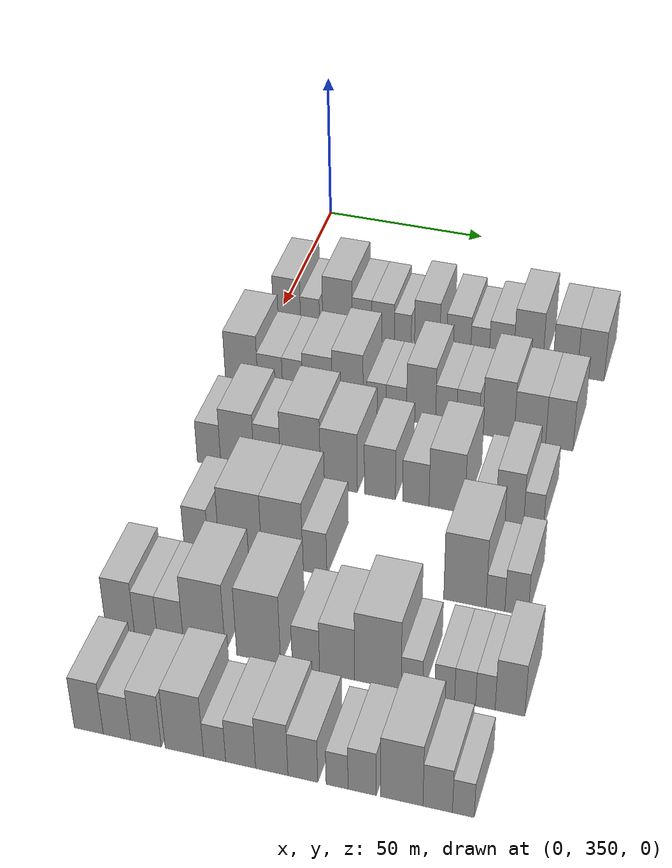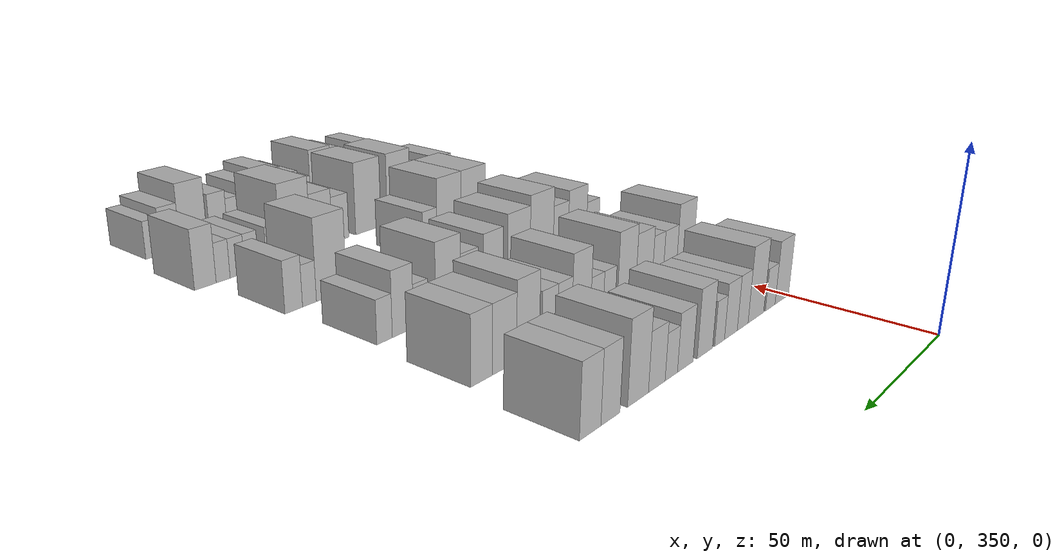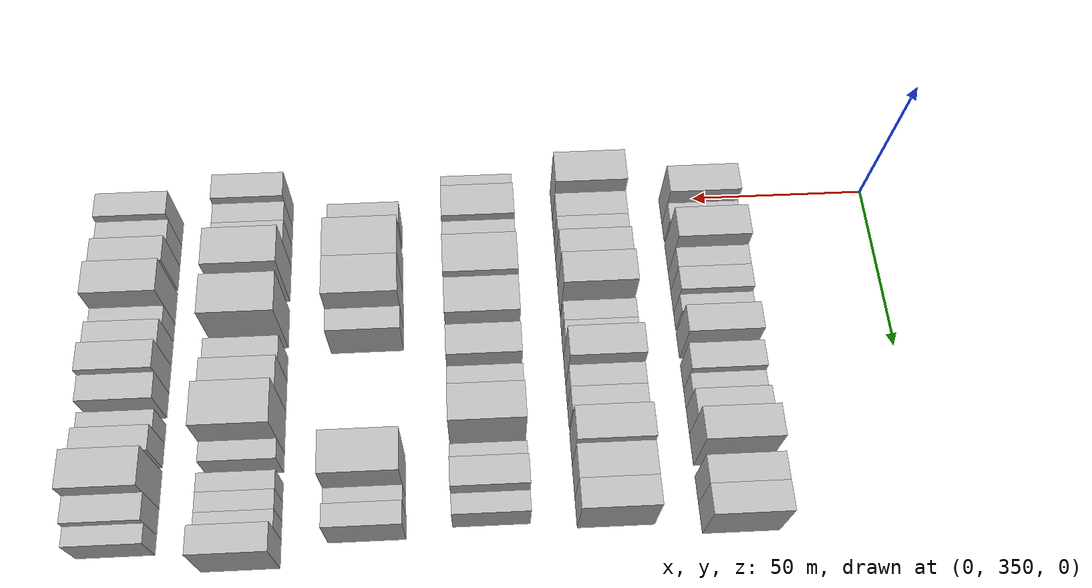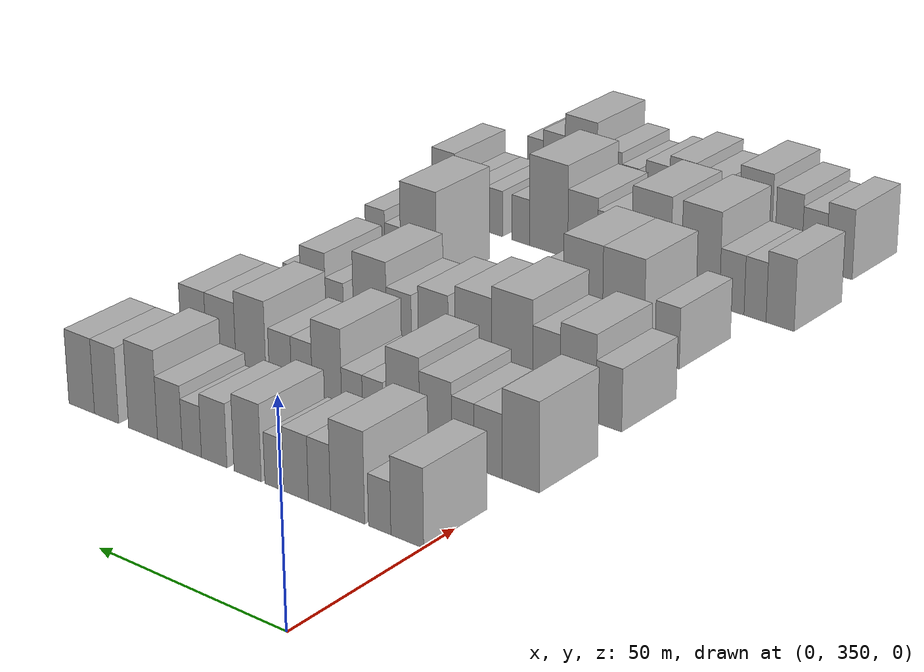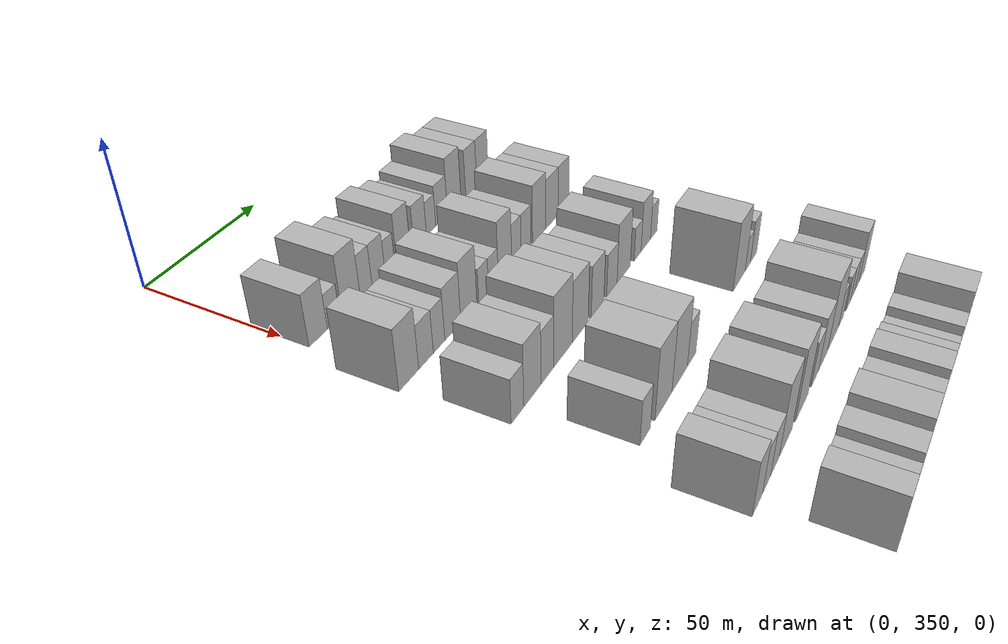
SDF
<sdf version="1.6">
 <world name="default">
  <model name="building_95">
   <static>1</static>
   <pose>50.0000 354.0853 0 0.000000 0.000000 0.000000</pose>
   <link name="link">
    <pose>0 0 9.00 0 0 0</pose>
    <collision name="collision"><geometry><box><size>20.0000 8.5305 18.0000</size></box></geometry></collision>
    <visual name="visual">
     <cast_shadows>0</cast_shadows>
     <geometry><box><size>20.0000 8.5305 18.0000</size></box></geometry>
     <material>
      <script>
       <uri>model://HANNAS_wall/materials/scripts</uri>
       <uri>model://HANNAS_wall/materials/textures</uri>
       <name>vrc/HANNAS_wall</name>
      </script>
     </material>
    </visual>
   </link>
  </model>
  <model name="building_96">
   <static>1</static>
   <pose>50.0000 361.3111 0 0.000000 0.000000 0.000000</pose>
   <link name="link">
    <pose>0 0 6.00 0 0 0</pose>
    <collision name="collision"><geometry><box><size>20.0000 5.9212 12.0000</size></box></geometry></collision>
    <visual name="visual">
     <cast_shadows>0</cast_shadows>
     <geometry><box><size>20.0000 5.9212 12.0000</size></box></geometry>
     <material>
      <script>
       <uri>model://HANNAS_wall/materials/scripts</uri>
       <uri>model://HANNAS_wall/materials/textures</uri>
       <name>vrc/HANNAS_wall</name>
      </script>
     </material>
    </visual>
   </link>
  </model>
  <model name="building_97">
   <static>1</static>
   <pose>50.0000 369.8337 0 0.000000 0.000000 0.000000</pose>
   <link name="link">
    <pose>0 0 10.50 0 0 0</pose>
    <collision name="collision"><geometry><box><size>20.0000 9.1239 21.0000</size></box></geometry></collision>
    <visual name="visual">
     <cast_shadows>0</cast_shadows>
     <geometry><box><size>20.0000 9.1239 21.0000</size></box></geometry>
     <material>
      <script>
       <uri>model://HANNAS_wall/materials/scripts</uri>
       <uri>model://HANNAS_wall/materials/textures</uri>
       <name>vrc/HANNAS_wall</name>
      </script>
     </material>
    </visual>
   </link>
  </model>
  <model name="building_98">
   <static>1</static>
   <pose>50.0000 377.4183 0 0.000000 0.000000 0.000000</pose>
   <link name="link">
    <pose>0 0 7.50 0 0 0</pose>
    <collision name="collision"><geometry><box><size>20.0000 6.0452 15.0000</size></box></geometry></collision>
    <visual name="visual">
     <cast_shadows>0</cast_shadows>
     <geometry><box><size>20.0000 6.0452 15.0000</size></box></geometry>
     <material>
      <script>
       <uri>model://HANNAS_wall/materials/scripts</uri>
       <uri>model://HANNAS_wall/materials/textures</uri>
       <name>vrc/HANNAS_wall</name>
      </script>
     </material>
    </visual>
   </link>
  </model>
  <model name="building_99">
   <static>1</static>
   <pose>50.0000 383.8844 0 0.000000 0.000000 0.000000</pose>
   <link name="link">
    <pose>0 0 7.50 0 0 0</pose>
    <collision name="collision"><geometry><box><size>20.0000 6.8869 15.0000</size></box></geometry></collision>
    <visual name="visual">
     <cast_shadows>0</cast_shadows>
     <geometry><box><size>20.0000 6.8869 15.0000</size></box></geometry>
     <material>
      <script>
       <uri>model://HANNAS_wall/materials/scripts</uri>
       <uri>model://HANNAS_wall/materials/textures</uri>
       <name>vrc/HANNAS_wall</name>
      </script>
     </material>
    </visual>
   </link>
  </model>
  <model name="building_100">
   <static>1</static>
   <pose>50.0000 389.9177 0 0.000000 0.000000 0.000000</pose>
   <link name="link">
    <pose>0 0 6.00 0 0 0</pose>
    <collision name="collision"><geometry><box><size>20.0000 5.1797 12.0000</size></box></geometry></collision>
    <visual name="visual">
     <cast_shadows>0</cast_shadows>
     <geometry><box><size>20.0000 5.1797 12.0000</size></box></geometry>
     <material>
      <script>
       <uri>model://HANNAS_wall/materials/scripts</uri>
       <uri>model://HANNAS_wall/materials/textures</uri>
       <name>vrc/HANNAS_wall</name>
      </script>
     </material>
    </visual>
   </link>
  </model>
  <model name="building_101">
   <static>1</static>
   <pose>50.0000 397.3579 0 0.000000 0.000000 0.000000</pose>
   <link name="link">
    <pose>0 0 9.00 0 0 0</pose>
    <collision name="collision"><geometry><box><size>20.0000 7.7007 18.0000</size></box></geometry></collision>
    <visual name="visual">
     <cast_shadows>0</cast_shadows>
     <geometry><box><size>20.0000 7.7007 18.0000</size></box></geometry>
     <material>
      <script>
       <uri>model://HANNAS_wall/materials/scripts</uri>
       <uri>model://HANNAS_wall/materials/textures</uri>
       <name>vrc/HANNAS_wall</name>
      </script>
     </material>
    </visual>
   </link>
  </model>
  <model name="building_102">
   <static>1</static>
   <pose>50.0000 406.8800 0 0.000000 0.000000 0.000000</pose>
   <link name="link">
    <pose>0 0 7.50 0 0 0</pose>
    <collision name="collision"><geometry><box><size>20.0000 7.3435 15.0000</size></box></geometry></collision>
    <visual name="visual">
     <cast_shadows>0</cast_shadows>
     <geometry><box><size>20.0000 7.3435 15.0000</size></box></geometry>
     <material>
      <script>
       <uri>model://HANNAS_wall/materials/scripts</uri>
       <uri>model://HANNAS_wall/materials/textures</uri>
       <name>vrc/HANNAS_wall</name>
      </script>
     </material>
    </visual>
   </link>
  </model>
  <model name="building_103">
   <static>1</static>
   <pose>50.0000 413.3430 0 0.000000 0.000000 0.000000</pose>
   <link name="link">
    <pose>0 0 6.00 0 0 0</pose>
    <collision name="collision"><geometry><box><size>20.0000 5.5825 12.0000</size></box></geometry></collision>
    <visual name="visual">
     <cast_shadows>0</cast_shadows>
     <geometry><box><size>20.0000 5.5825 12.0000</size></box></geometry>
     <material>
      <script>
       <uri>model://HANNAS_wall/materials/scripts</uri>
       <uri>model://HANNAS_wall/materials/textures</uri>
       <name>vrc/HANNAS_wall</name>
      </script>
     </material>
    </visual>
   </link>
  </model>
  <model name="building_104">
   <static>1</static>
   <pose>50.0000 419.7717 0 0.000000 0.000000 0.000000</pose>
   <link name="link">
    <pose>0 0 7.50 0 0 0</pose>
    <collision name="collision"><geometry><box><size>20.0000 7.2748 15.0000</size></box></geometry></collision>
    <visual name="visual">
     <cast_shadows>0</cast_shadows>
     <geometry><box><size>20.0000 7.2748 15.0000</size></box></geometry>
     <material>
      <script>
       <uri>model://HANNAS_wall/materials/scripts</uri>
       <uri>model://HANNAS_wall/materials/textures</uri>
       <name>vrc/HANNAS_wall</name>
      </script>
     </material>
    </visual>
   </link>
  </model>
  <model name="building_105">
   <static>1</static>
   <pose>50.0000 427.7318 0 0.000000 0.000000 0.000000</pose>
   <link name="link">
    <pose>0 0 10.50 0 0 0</pose>
    <collision name="collision"><geometry><box><size>20.0000 8.6454 21.0000</size></box></geometry></collision>
    <visual name="visual">
     <cast_shadows>0</cast_shadows>
     <geometry><box><size>20.0000 8.6454 21.0000</size></box></geometry>
     <material>
      <script>
       <uri>model://HANNAS_wall/materials/scripts</uri>
       <uri>model://HANNAS_wall/materials/textures</uri>
       <name>vrc/HANNAS_wall</name>
      </script>
     </material>
    </visual>
   </link>
  </model>
  <model name="building_106">
   <static>1</static>
   <pose>50.0000 438.7239 0 0.000000 0.000000 0.000000</pose>
   <link name="link">
    <pose>0 0 9.00 0 0 0</pose>
    <collision name="collision"><geometry><box><size>20.0000 7.3388 18.0000</size></box></geometry></collision>
    <visual name="visual">
     <cast_shadows>0</cast_shadows>
     <geometry><box><size>20.0000 7.3388 18.0000</size></box></geometry>
     <material>
      <script>
       <uri>model://HANNAS_wall/materials/scripts</uri>
       <uri>model://HANNAS_wall/materials/textures</uri>
       <name>vrc/HANNAS_wall</name>
      </script>
     </material>
    </visual>
   </link>
  </model>
  <model name="building_107">
   <static>1</static>
   <pose>50.0000 446.3287 0 0.000000 0.000000 0.000000</pose>
   <link name="link">
    <pose>0 0 9.00 0 0 0</pose>
    <collision name="collision"><geometry><box><size>20.0000 7.8707 18.0000</size></box></geometry></collision>
    <visual name="visual">
     <cast_shadows>0</cast_shadows>
     <geometry><box><size>20.0000 7.8707 18.0000</size></box></geometry>
     <material>
      <script>
       <uri>model://HANNAS_wall/materials/scripts</uri>
       <uri>model://HANNAS_wall/materials/textures</uri>
       <name>vrc/HANNAS_wall</name>
      </script>
     </material>
    </visual>
   </link>
  </model>
  <model name="building_212">
   <static>1</static>
   <pose>82.0000 350.5982 0 0.000000 0.000000 0.000000</pose>
   <link name="link">
    <pose>0 0 10.50 0 0 0</pose>
    <collision name="collision"><geometry><box><size>20.0000 9.7491 21.0000</size></box></geometry></collision>
    <visual name="visual">
     <cast_shadows>0</cast_shadows>
     <geometry><box><size>20.0000 9.7491 21.0000</size></box></geometry>
     <material>
      <script>
       <uri>model://HANNAS_wall/materials/scripts</uri>
       <uri>model://HANNAS_wall/materials/textures</uri>
       <name>vrc/HANNAS_wall</name>
      </script>
     </material>
    </visual>
   </link>
  </model>
  <model name="building_213">
   <static>1</static>
   <pose>82.0000 359.1956 0 0.000000 0.000000 0.000000</pose>
   <link name="link">
    <pose>0 0 7.50 0 0 0</pose>
    <collision name="collision"><geometry><box><size>20.0000 7.4457 15.0000</size></box></geometry></collision>
    <visual name="visual">
     <cast_shadows>0</cast_shadows>
     <geometry><box><size>20.0000 7.4457 15.0000</size></box></geometry>
     <material>
      <script>
       <uri>model://HANNAS_wall/materials/scripts</uri>
       <uri>model://HANNAS_wall/materials/textures</uri>
       <name>vrc/HANNAS_wall</name>
      </script>
     </material>
    </visual>
   </link>
  </model>
  <model name="building_214">
   <static>1</static>
   <pose>82.0000 365.9326 0 0.000000 0.000000 0.000000</pose>
   <link name="link">
    <pose>0 0 7.50 0 0 0</pose>
    <collision name="collision"><geometry><box><size>20.0000 6.0282 15.0000</size></box></geometry></collision>
    <visual name="visual">
     <cast_shadows>0</cast_shadows>
     <geometry><box><size>20.0000 6.0282 15.0000</size></box></geometry>
     <material>
      <script>
       <uri>model://HANNAS_wall/materials/scripts</uri>
       <uri>model://HANNAS_wall/materials/textures</uri>
       <name>vrc/HANNAS_wall</name>
      </script>
     </material>
    </visual>
   </link>
  </model>
  <model name="building_215">
   <static>1</static>
   <pose>82.0000 373.2964 0 0.000000 0.000000 0.000000</pose>
   <link name="link">
    <pose>0 0 9.00 0 0 0</pose>
    <collision name="collision"><geometry><box><size>20.0000 8.6994 18.0000</size></box></geometry></collision>
    <visual name="visual">
     <cast_shadows>0</cast_shadows>
     <geometry><box><size>20.0000 8.6994 18.0000</size></box></geometry>
     <material>
      <script>
       <uri>model://HANNAS_wall/materials/scripts</uri>
       <uri>model://HANNAS_wall/materials/textures</uri>
       <name>vrc/HANNAS_wall</name>
      </script>
     </material>
    </visual>
   </link>
  </model>
  <model name="building_216">
   <static>1</static>
   <pose>82.0000 382.2336 0 0.000000 0.000000 0.000000</pose>
   <link name="link">
    <pose>0 0 10.50 0 0 0</pose>
    <collision name="collision"><geometry><box><size>20.0000 9.1749 21.0000</size></box></geometry></collision>
    <visual name="visual">
     <cast_shadows>0</cast_shadows>
     <geometry><box><size>20.0000 9.1749 21.0000</size></box></geometry>
     <material>
      <script>
       <uri>model://HANNAS_wall/materials/scripts</uri>
       <uri>model://HANNAS_wall/materials/textures</uri>
       <name>vrc/HANNAS_wall</name>
      </script>
     </material>
    </visual>
   </link>
  </model>
  <model name="building_217">
   <static>1</static>
   <pose>82.0000 390.7008 0 0.000000 0.000000 0.000000</pose>
   <link name="link">
    <pose>0 0 6.00 0 0 0</pose>
    <collision name="collision"><geometry><box><size>20.0000 5.7595 12.0000</size></box></geometry></collision>
    <visual name="visual">
     <cast_shadows>0</cast_shadows>
     <geometry><box><size>20.0000 5.7595 12.0000</size></box></geometry>
     <material>
      <script>
       <uri>model://HANNAS_wall/materials/scripts</uri>
       <uri>model://HANNAS_wall/materials/textures</uri>
       <name>vrc/HANNAS_wall</name>
      </script>
     </material>
    </visual>
   </link>
  </model>
  <model name="building_218">
   <static>1</static>
   <pose>82.0000 396.5526 0 0.000000 0.000000 0.000000</pose>
   <link name="link">
    <pose>0 0 6.00 0 0 0</pose>
    <collision name="collision"><geometry><box><size>20.0000 5.9442 12.0000</size></box></geometry></collision>
    <visual name="visual">
     <cast_shadows>0</cast_shadows>
     <geometry><box><size>20.0000 5.9442 12.0000</size></box></geometry>
     <material>
      <script>
       <uri>model://HANNAS_wall/materials/scripts</uri>
       <uri>model://HANNAS_wall/materials/textures</uri>
       <name>vrc/HANNAS_wall</name>
      </script>
     </material>
    </visual>
   </link>
  </model>
  <model name="building_219">
   <static>1</static>
   <pose>82.0000 403.7409 0 0.000000 0.000000 0.000000</pose>
   <link name="link">
    <pose>0 0 10.50 0 0 0</pose>
    <collision name="collision"><geometry><box><size>20.0000 8.4323 21.0000</size></box></geometry></collision>
    <visual name="visual">
     <cast_shadows>0</cast_shadows>
     <geometry><box><size>20.0000 8.4323 21.0000</size></box></geometry>
     <material>
      <script>
       <uri>model://HANNAS_wall/materials/scripts</uri>
       <uri>model://HANNAS_wall/materials/textures</uri>
       <name>vrc/HANNAS_wall</name>
      </script>
     </material>
    </visual>
   </link>
  </model>
  <model name="building_220">
   <static>1</static>
   <pose>82.0000 410.9836 0 0.000000 0.000000 0.000000</pose>
   <link name="link">
    <pose>0 0 7.50 0 0 0</pose>
    <collision name="collision"><geometry><box><size>20.0000 6.0532 15.0000</size></box></geometry></collision>
    <visual name="visual">
     <cast_shadows>0</cast_shadows>
     <geometry><box><size>20.0000 6.0532 15.0000</size></box></geometry>
     <material>
      <script>
       <uri>model://HANNAS_wall/materials/scripts</uri>
       <uri>model://HANNAS_wall/materials/textures</uri>
       <name>vrc/HANNAS_wall</name>
      </script>
     </material>
    </visual>
   </link>
  </model>
  <model name="building_221">
   <static>1</static>
   <pose>82.0000 417.2935 0 0.000000 0.000000 0.000000</pose>
   <link name="link">
    <pose>0 0 7.50 0 0 0</pose>
    <collision name="collision"><geometry><box><size>20.0000 6.5666 15.0000</size></box></geometry></collision>
    <visual name="visual">
     <cast_shadows>0</cast_shadows>
     <geometry><box><size>20.0000 6.5666 15.0000</size></box></geometry>
     <material>
      <script>
       <uri>model://HANNAS_wall/materials/scripts</uri>
       <uri>model://HANNAS_wall/materials/textures</uri>
       <name>vrc/HANNAS_wall</name>
      </script>
     </material>
    </visual>
   </link>
  </model>
  <model name="building_222">
   <static>1</static>
   <pose>82.0000 426.0742 0 0.000000 0.000000 0.000000</pose>
   <link name="link">
    <pose>0 0 10.50 0 0 0</pose>
    <collision name="collision"><geometry><box><size>20.0000 8.9947 21.0000</size></box></geometry></collision>
    <visual name="visual">
     <cast_shadows>0</cast_shadows>
     <geometry><box><size>20.0000 8.9947 21.0000</size></box></geometry>
     <material>
      <script>
       <uri>model://HANNAS_wall/materials/scripts</uri>
       <uri>model://HANNAS_wall/materials/textures</uri>
       <name>vrc/HANNAS_wall</name>
      </script>
     </material>
    </visual>
   </link>
  </model>
  <model name="building_223">
   <static>1</static>
   <pose>82.0000 435.0455 0 0.000000 0.000000 0.000000</pose>
   <link name="link">
    <pose>0 0 9.00 0 0 0</pose>
    <collision name="collision"><geometry><box><size>20.0000 8.9478 18.0000</size></box></geometry></collision>
    <visual name="visual">
     <cast_shadows>0</cast_shadows>
     <geometry><box><size>20.0000 8.9478 18.0000</size></box></geometry>
     <material>
      <script>
       <uri>model://HANNAS_wall/materials/scripts</uri>
       <uri>model://HANNAS_wall/materials/textures</uri>
       <name>vrc/HANNAS_wall</name>
      </script>
     </material>
    </visual>
   </link>
  </model>
  <model name="building_224">
   <static>1</static>
   <pose>82.0000 443.3984 0 0.000000 0.000000 0.000000</pose>
   <link name="link">
    <pose>0 0 9.00 0 0 0</pose>
    <collision name="collision"><geometry><box><size>20.0000 7.7579 18.0000</size></box></geometry></collision>
    <visual name="visual">
     <cast_shadows>0</cast_shadows>
     <geometry><box><size>20.0000 7.7579 18.0000</size></box></geometry>
     <material>
      <script>
       <uri>model://HANNAS_wall/materials/scripts</uri>
       <uri>model://HANNAS_wall/materials/textures</uri>
       <name>vrc/HANNAS_wall</name>
      </script>
     </material>
    </visual>
   </link>
  </model>
  <model name="building_330">
   <static>1</static>
   <pose>114.0000 351.7966 0 0.000000 0.000000 0.000000</pose>
   <link name="link">
    <pose>0 0 7.50 0 0 0</pose>
    <collision name="collision"><geometry><box><size>20.0000 6.8586 15.0000</size></box></geometry></collision>
    <visual name="visual">
     <cast_shadows>0</cast_shadows>
     <geometry><box><size>20.0000 6.8586 15.0000</size></box></geometry>
     <material>
      <script>
       <uri>model://HANNAS_wall/materials/scripts</uri>
       <uri>model://HANNAS_wall/materials/textures</uri>
       <name>vrc/HANNAS_wall</name>
      </script>
     </material>
    </visual>
   </link>
  </model>
  <model name="building_331">
   <static>1</static>
   <pose>114.0000 360.0717 0 0.000000 0.000000 0.000000</pose>
   <link name="link">
    <pose>0 0 10.50 0 0 0</pose>
    <collision name="collision"><geometry><box><size>20.0000 9.6916 21.0000</size></box></geometry></collision>
    <visual name="visual">
     <cast_shadows>0</cast_shadows>
     <geometry><box><size>20.0000 9.6916 21.0000</size></box></geometry>
     <material>
      <script>
       <uri>model://HANNAS_wall/materials/scripts</uri>
       <uri>model://HANNAS_wall/materials/textures</uri>
       <name>vrc/HANNAS_wall</name>
      </script>
     </material>
    </visual>
   </link>
  </model>
  <model name="building_332">
   <static>1</static>
   <pose>114.0000 368.7089 0 0.000000 0.000000 0.000000</pose>
   <link name="link">
    <pose>0 0 9.00 0 0 0</pose>
    <collision name="collision"><geometry><box><size>20.0000 7.5828 18.0000</size></box></geometry></collision>
    <visual name="visual">
     <cast_shadows>0</cast_shadows>
     <geometry><box><size>20.0000 7.5828 18.0000</size></box></geometry>
     <material>
      <script>
       <uri>model://HANNAS_wall/materials/scripts</uri>
       <uri>model://HANNAS_wall/materials/textures</uri>
       <name>vrc/HANNAS_wall</name>
      </script>
     </material>
    </visual>
   </link>
  </model>
  <model name="building_333">
   <static>1</static>
   <pose>114.0000 378.1629 0 0.000000 0.000000 0.000000</pose>
   <link name="link">
    <pose>0 0 12.00 0 0 0</pose>
    <collision name="collision"><geometry><box><size>20.0000 11.3253 24.0000</size></box></geometry></collision>
    <visual name="visual">
     <cast_shadows>0</cast_shadows>
     <geometry><box><size>20.0000 11.3253 24.0000</size></box></geometry>
     <material>
      <script>
       <uri>model://HANNAS_wall/materials/scripts</uri>
       <uri>model://HANNAS_wall/materials/textures</uri>
       <name>vrc/HANNAS_wall</name>
      </script>
     </material>
    </visual>
   </link>
  </model>
  <model name="building_334">
   <static>1</static>
   <pose>114.0000 389.0121 0 0.000000 0.000000 0.000000</pose>
   <link name="link">
    <pose>0 0 10.50 0 0 0</pose>
    <collision name="collision"><geometry><box><size>20.0000 10.3731 21.0000</size></box></geometry></collision>
    <visual name="visual">
     <cast_shadows>0</cast_shadows>
     <geometry><box><size>20.0000 10.3731 21.0000</size></box></geometry>
     <material>
      <script>
       <uri>model://HANNAS_wall/materials/scripts</uri>
       <uri>model://HANNAS_wall/materials/textures</uri>
       <name>vrc/HANNAS_wall</name>
      </script>
     </material>
    </visual>
   </link>
  </model>
  <model name="building_335">
   <static>1</static>
   <pose>114.0000 400.5326 0 0.000000 0.000000 0.000000</pose>
   <link name="link">
    <pose>0 0 9.00 0 0 0</pose>
    <collision name="collision"><geometry><box><size>20.0000 8.6680 18.0000</size></box></geometry></collision>
    <visual name="visual">
     <cast_shadows>0</cast_shadows>
     <geometry><box><size>20.0000 8.6680 18.0000</size></box></geometry>
     <material>
      <script>
       <uri>model://HANNAS_wall/materials/scripts</uri>
       <uri>model://HANNAS_wall/materials/textures</uri>
       <name>vrc/HANNAS_wall</name>
      </script>
     </material>
    </visual>
   </link>
  </model>
  <model name="building_336">
   <static>1</static>
   <pose>114.0000 410.5450 0 0.000000 0.000000 0.000000</pose>
   <link name="link">
    <pose>0 0 7.50 0 0 0</pose>
    <collision name="collision"><geometry><box><size>20.0000 7.3567 15.0000</size></box></geometry></collision>
    <visual name="visual">
     <cast_shadows>0</cast_shadows>
     <geometry><box><size>20.0000 7.3567 15.0000</size></box></geometry>
     <material>
      <script>
       <uri>model://HANNAS_wall/materials/scripts</uri>
       <uri>model://HANNAS_wall/materials/textures</uri>
       <name>vrc/HANNAS_wall</name>
      </script>
     </material>
    </visual>
   </link>
  </model>
  <model name="building_337">
   <static>1</static>
   <pose>114.0000 419.1715 0 0.000000 0.000000 0.000000</pose>
   <link name="link">
    <pose>0 0 10.50 0 0 0</pose>
    <collision name="collision"><geometry><box><size>20.0000 9.8961 21.0000</size></box></geometry></collision>
    <visual name="visual">
     <cast_shadows>0</cast_shadows>
     <geometry><box><size>20.0000 9.8961 21.0000</size></box></geometry>
     <material>
      <script>
       <uri>model://HANNAS_wall/materials/scripts</uri>
       <uri>model://HANNAS_wall/materials/textures</uri>
       <name>vrc/HANNAS_wall</name>
      </script>
     </material>
    </visual>
   </link>
  </model>
  <model name="building_338">
   <static>1</static>
   <pose>114.0000 429.8467 0 0.000000 0.000000 0.000000</pose>
   <link name="link">
    <pose>0 0 6.00 0 0 0</pose>
    <collision name="collision"><geometry><box><size>20.0000 5.4544 12.0000</size></box></geometry></collision>
    <visual name="visual">
     <cast_shadows>0</cast_shadows>
     <geometry><box><size>20.0000 5.4544 12.0000</size></box></geometry>
     <material>
      <script>
       <uri>model://HANNAS_wall/materials/scripts</uri>
       <uri>model://HANNAS_wall/materials/textures</uri>
       <name>vrc/HANNAS_wall</name>
      </script>
     </material>
    </visual>
   </link>
  </model>
  <model name="building_339">
   <static>1</static>
   <pose>114.0000 436.3691 0 0.000000 0.000000 0.000000</pose>
   <link name="link">
    <pose>0 0 9.00 0 0 0</pose>
    <collision name="collision"><geometry><box><size>20.0000 7.5905 18.0000</size></box></geometry></collision>
    <visual name="visual">
     <cast_shadows>0</cast_shadows>
     <geometry><box><size>20.0000 7.5905 18.0000</size></box></geometry>
     <material>
      <script>
       <uri>model://HANNAS_wall/materials/scripts</uri>
       <uri>model://HANNAS_wall/materials/textures</uri>
       <name>vrc/HANNAS_wall</name>
      </script>
     </material>
    </visual>
   </link>
  </model>
  <model name="building_340">
   <static>1</static>
   <pose>114.0000 442.8708 0 0.000000 0.000000 0.000000</pose>
   <link name="link">
    <pose>0 0 6.00 0 0 0</pose>
    <collision name="collision"><geometry><box><size>20.0000 5.4128 12.0000</size></box></geometry></collision>
    <visual name="visual">
     <cast_shadows>0</cast_shadows>
     <geometry><box><size>20.0000 5.4128 12.0000</size></box></geometry>
     <material>
      <script>
       <uri>model://HANNAS_wall/materials/scripts</uri>
       <uri>model://HANNAS_wall/materials/textures</uri>
       <name>vrc/HANNAS_wall</name>
      </script>
     </material>
    </visual>
   </link>
  </model>
  <model name="building_445">
   <static>1</static>
   <pose>146.0000 359.4545 0 0.000000 0.000000 0.000000</pose>
   <link name="link">
    <pose>0 0 7.50 0 0 0</pose>
    <collision name="collision"><geometry><box><size>20.0000 6.7561 15.0000</size></box></geometry></collision>
    <visual name="visual">
     <cast_shadows>0</cast_shadows>
     <geometry><box><size>20.0000 6.7561 15.0000</size></box></geometry>
     <material>
      <script>
       <uri>model://HANNAS_wall/materials/scripts</uri>
       <uri>model://HANNAS_wall/materials/textures</uri>
       <name>vrc/HANNAS_wall</name>
      </script>
     </material>
    </visual>
   </link>
  </model>
  <model name="building_446">
   <static>1</static>
   <pose>146.0000 371.6678 0 0.000000 0.000000 0.000000</pose>
   <link name="link">
    <pose>0 0 12.00 0 0 0</pose>
    <collision name="collision"><geometry><box><size>20.0000 11.6706 24.0000</size></box></geometry></collision>
    <visual name="visual">
     <cast_shadows>0</cast_shadows>
     <geometry><box><size>20.0000 11.6706 24.0000</size></box></geometry>
     <material>
      <script>
       <uri>model://HANNAS_wall/materials/scripts</uri>
       <uri>model://HANNAS_wall/materials/textures</uri>
       <name>vrc/HANNAS_wall</name>
      </script>
     </material>
    </visual>
   </link>
  </model>
  <model name="building_447">
   <static>1</static>
   <pose>146.0000 383.0988 0 0.000000 0.000000 0.000000</pose>
   <link name="link">
    <pose>0 0 12.00 0 0 0</pose>
    <collision name="collision"><geometry><box><size>20.0000 11.1913 24.0000</size></box></geometry></collision>
    <visual name="visual">
     <cast_shadows>0</cast_shadows>
     <geometry><box><size>20.0000 11.1913 24.0000</size></box></geometry>
     <material>
      <script>
       <uri>model://HANNAS_wall/materials/scripts</uri>
       <uri>model://HANNAS_wall/materials/textures</uri>
       <name>vrc/HANNAS_wall</name>
      </script>
     </material>
    </visual>
   </link>
  </model>
  <model name="building_448">
   <static>1</static>
   <pose>146.0000 391.9166 0 0.000000 0.000000 0.000000</pose>
   <link name="link">
    <pose>0 0 7.50 0 0 0</pose>
    <collision name="collision"><geometry><box><size>20.0000 6.4443 15.0000</size></box></geometry></collision>
    <visual name="visual">
     <cast_shadows>0</cast_shadows>
     <geometry><box><size>20.0000 6.4443 15.0000</size></box></geometry>
     <material>
      <script>
       <uri>model://HANNAS_wall/materials/scripts</uri>
       <uri>model://HANNAS_wall/materials/textures</uri>
       <name>vrc/HANNAS_wall</name>
      </script>
     </material>
    </visual>
   </link>
  </model>
  <model name="building_449">
   <static>1</static>
   <pose>146.0000 431.7309 0 0.000000 0.000000 0.000000</pose>
   <link name="link">
    <pose>0 0 12.00 0 0 0</pose>
    <collision name="collision"><geometry><box><size>20.0000 11.0614 24.0000</size></box></geometry></collision>
    <visual name="visual">
     <cast_shadows>0</cast_shadows>
     <geometry><box><size>20.0000 11.0614 24.0000</size></box></geometry>
     <material>
      <script>
       <uri>model://HANNAS_wall/materials/scripts</uri>
       <uri>model://HANNAS_wall/materials/textures</uri>
       <name>vrc/HANNAS_wall</name>
      </script>
     </material>
    </visual>
   </link>
  </model>
  <model name="building_450">
   <static>1</static>
   <pose>146.0000 439.7069 0 0.000000 0.000000 0.000000</pose>
   <link name="link">
    <pose>0 0 6.00 0 0 0</pose>
    <collision name="collision"><geometry><box><size>20.0000 4.8907 12.0000</size></box></geometry></collision>
    <visual name="visual">
     <cast_shadows>0</cast_shadows>
     <geometry><box><size>20.0000 4.8907 12.0000</size></box></geometry>
     <material>
      <script>
       <uri>model://HANNAS_wall/materials/scripts</uri>
       <uri>model://HANNAS_wall/materials/textures</uri>
       <name>vrc/HANNAS_wall</name>
      </script>
     </material>
    </visual>
   </link>
  </model>
  <model name="building_451">
   <static>1</static>
   <pose>146.0000 445.1695 0 0.000000 0.000000 0.000000</pose>
   <link name="link">
    <pose>0 0 7.50 0 0 0</pose>
    <collision name="collision"><geometry><box><size>20.0000 6.0343 15.0000</size></box></geometry></collision>
    <visual name="visual">
     <cast_shadows>0</cast_shadows>
     <geometry><box><size>20.0000 6.0343 15.0000</size></box></geometry>
     <material>
      <script>
       <uri>model://HANNAS_wall/materials/scripts</uri>
       <uri>model://HANNAS_wall/materials/textures</uri>
       <name>vrc/HANNAS_wall</name>
      </script>
     </material>
    </visual>
   </link>
  </model>
  <model name="building_565">
   <static>1</static>
   <pose>178.0000 350.5808 0 0.000000 0.000000 0.000000</pose>
   <link name="link">
    <pose>0 0 9.00 0 0 0</pose>
    <collision name="collision"><geometry><box><size>20.0000 7.7077 18.0000</size></box></geometry></collision>
    <visual name="visual">
     <cast_shadows>0</cast_shadows>
     <geometry><box><size>20.0000 7.7077 18.0000</size></box></geometry>
     <material>
      <script>
       <uri>model://HANNAS_wall/materials/scripts</uri>
       <uri>model://HANNAS_wall/materials/textures</uri>
       <name>vrc/HANNAS_wall</name>
      </script>
     </material>
    </visual>
   </link>
  </model>
  <model name="building_566">
   <static>1</static>
   <pose>178.0000 357.4871 0 0.000000 0.000000 0.000000</pose>
   <link name="link">
    <pose>0 0 7.50 0 0 0</pose>
    <collision name="collision"><geometry><box><size>20.0000 6.1050 15.0000</size></box></geometry></collision>
    <visual name="visual">
     <cast_shadows>0</cast_shadows>
     <geometry><box><size>20.0000 6.1050 15.0000</size></box></geometry>
     <material>
      <script>
       <uri>model://HANNAS_wall/materials/scripts</uri>
       <uri>model://HANNAS_wall/materials/textures</uri>
       <name>vrc/HANNAS_wall</name>
      </script>
     </material>
    </visual>
   </link>
  </model>
  <model name="building_567">
   <static>1</static>
   <pose>178.0000 364.0044 0 0.000000 0.000000 0.000000</pose>
   <link name="link">
    <pose>0 0 7.50 0 0 0</pose>
    <collision name="collision"><geometry><box><size>20.0000 6.9297 15.0000</size></box></geometry></collision>
    <visual name="visual">
     <cast_shadows>0</cast_shadows>
     <geometry><box><size>20.0000 6.9297 15.0000</size></box></geometry>
     <material>
      <script>
       <uri>model://HANNAS_wall/materials/scripts</uri>
       <uri>model://HANNAS_wall/materials/textures</uri>
       <name>vrc/HANNAS_wall</name>
      </script>
     </material>
    </visual>
   </link>
  </model>
  <model name="building_568">
   <static>1</static>
   <pose>178.0000 372.9537 0 0.000000 0.000000 0.000000</pose>
   <link name="link">
    <pose>0 0 12.00 0 0 0</pose>
    <collision name="collision"><geometry><box><size>20.0000 10.9688 24.0000</size></box></geometry></collision>
    <visual name="visual">
     <cast_shadows>0</cast_shadows>
     <geometry><box><size>20.0000 10.9688 24.0000</size></box></geometry>
     <material>
      <script>
       <uri>model://HANNAS_wall/materials/scripts</uri>
       <uri>model://HANNAS_wall/materials/textures</uri>
       <name>vrc/HANNAS_wall</name>
      </script>
     </material>
    </visual>
   </link>
  </model>
  <model name="building_569">
   <static>1</static>
   <pose>178.0000 387.1280 0 0.000000 0.000000 0.000000</pose>
   <link name="link">
    <pose>0 0 12.00 0 0 0</pose>
    <collision name="collision"><geometry><box><size>20.0000 11.3797 24.0000</size></box></geometry></collision>
    <visual name="visual">
     <cast_shadows>0</cast_shadows>
     <geometry><box><size>20.0000 11.3797 24.0000</size></box></geometry>
     <material>
      <script>
       <uri>model://HANNAS_wall/materials/scripts</uri>
       <uri>model://HANNAS_wall/materials/textures</uri>
       <name>vrc/HANNAS_wall</name>
      </script>
     </material>
    </visual>
   </link>
  </model>
  <model name="building_570">
   <static>1</static>
   <pose>178.0000 399.3253 0 0.000000 0.000000 0.000000</pose>
   <link name="link">
    <pose>0 0 7.50 0 0 0</pose>
    <collision name="collision"><geometry><box><size>20.0000 7.0149 15.0000</size></box></geometry></collision>
    <visual name="visual">
     <cast_shadows>0</cast_shadows>
     <geometry><box><size>20.0000 7.0149 15.0000</size></box></geometry>
     <material>
      <script>
       <uri>model://HANNAS_wall/materials/scripts</uri>
       <uri>model://HANNAS_wall/materials/textures</uri>
       <name>vrc/HANNAS_wall</name>
      </script>
     </material>
    </visual>
   </link>
  </model>
  <model name="building_571">
   <static>1</static>
   <pose>178.0000 407.2987 0 0.000000 0.000000 0.000000</pose>
   <link name="link">
    <pose>0 0 9.00 0 0 0</pose>
    <collision name="collision"><geometry><box><size>20.0000 8.9319 18.0000</size></box></geometry></collision>
    <visual name="visual">
     <cast_shadows>0</cast_shadows>
     <geometry><box><size>20.0000 8.9319 18.0000</size></box></geometry>
     <material>
      <script>
       <uri>model://HANNAS_wall/materials/scripts</uri>
       <uri>model://HANNAS_wall/materials/textures</uri>
       <name>vrc/HANNAS_wall</name>
      </script>
     </material>
    </visual>
   </link>
  </model>
  <model name="building_572">
   <static>1</static>
   <pose>178.0000 417.6317 0 0.000000 0.000000 0.000000</pose>
   <link name="link">
    <pose>0 0 12.00 0 0 0</pose>
    <collision name="collision"><geometry><box><size>20.0000 11.7342 24.0000</size></box></geometry></collision>
    <visual name="visual">
     <cast_shadows>0</cast_shadows>
     <geometry><box><size>20.0000 11.7342 24.0000</size></box></geometry>
     <material>
      <script>
       <uri>model://HANNAS_wall/materials/scripts</uri>
       <uri>model://HANNAS_wall/materials/textures</uri>
       <name>vrc/HANNAS_wall</name>
      </script>
     </material>
    </visual>
   </link>
  </model>
  <model name="building_573">
   <static>1</static>
   <pose>178.0000 426.1755 0 0.000000 0.000000 0.000000</pose>
   <link name="link">
    <pose>0 0 6.00 0 0 0</pose>
    <collision name="collision"><geometry><box><size>20.0000 5.3534 12.0000</size></box></geometry></collision>
    <visual name="visual">
     <cast_shadows>0</cast_shadows>
     <geometry><box><size>20.0000 5.3534 12.0000</size></box></geometry>
     <material>
      <script>
       <uri>model://HANNAS_wall/materials/scripts</uri>
       <uri>model://HANNAS_wall/materials/textures</uri>
       <name>vrc/HANNAS_wall</name>
      </script>
     </material>
    </visual>
   </link>
  </model>
  <model name="building_574">
   <static>1</static>
   <pose>178.0000 434.3418 0 0.000000 0.000000 0.000000</pose>
   <link name="link">
    <pose>0 0 6.00 0 0 0</pose>
    <collision name="collision"><geometry><box><size>20.0000 4.9793 12.0000</size></box></geometry></collision>
    <visual name="visual">
     <cast_shadows>0</cast_shadows>
     <geometry><box><size>20.0000 4.9793 12.0000</size></box></geometry>
     <material>
      <script>
       <uri>model://HANNAS_wall/materials/scripts</uri>
       <uri>model://HANNAS_wall/materials/textures</uri>
       <name>vrc/HANNAS_wall</name>
      </script>
     </material>
    </visual>
   </link>
  </model>
  <model name="building_575">
   <static>1</static>
   <pose>178.0000 439.4317 0 0.000000 0.000000 0.000000</pose>
   <link name="link">
    <pose>0 0 6.00 0 0 0</pose>
    <collision name="collision"><geometry><box><size>20.0000 5.2005 12.0000</size></box></geometry></collision>
    <visual name="visual">
     <cast_shadows>0</cast_shadows>
     <geometry><box><size>20.0000 5.2005 12.0000</size></box></geometry>
     <material>
      <script>
       <uri>model://HANNAS_wall/materials/scripts</uri>
       <uri>model://HANNAS_wall/materials/textures</uri>
       <name>vrc/HANNAS_wall</name>
      </script>
     </material>
    </visual>
   </link>
  </model>
  <model name="building_576">
   <static>1</static>
   <pose>178.0000 444.4451 0 0.000000 0.000000 0.000000</pose>
   <link name="link">
    <pose>0 0 6.00 0 0 0</pose>
    <collision name="collision"><geometry><box><size>20.0000 4.8265 12.0000</size></box></geometry></collision>
    <visual name="visual">
     <cast_shadows>0</cast_shadows>
     <geometry><box><size>20.0000 4.8265 12.0000</size></box></geometry>
     <material>
      <script>
       <uri>model://HANNAS_wall/materials/scripts</uri>
       <uri>model://HANNAS_wall/materials/textures</uri>
       <name>vrc/HANNAS_wall</name>
      </script>
     </material>
    </visual>
   </link>
  </model>
  <model name="building_577">
   <static>1</static>
   <pose>178.0000 450.4959 0 0.000000 0.000000 0.000000</pose>
   <link name="link">
    <pose>0 0 9.00 0 0 0</pose>
    <collision name="collision"><geometry><box><size>20.0000 7.2750 18.0000</size></box></geometry></collision>
    <visual name="visual">
     <cast_shadows>0</cast_shadows>
     <geometry><box><size>20.0000 7.2750 18.0000</size></box></geometry>
     <material>
      <script>
       <uri>model://HANNAS_wall/materials/scripts</uri>
       <uri>model://HANNAS_wall/materials/textures</uri>
       <name>vrc/HANNAS_wall</name>
      </script>
     </material>
    </visual>
   </link>
  </model>
  <model name="building_674">
   <static>1</static>
   <pose>210.0000 355.1366 0 0.000000 0.000000 0.000000</pose>
   <link name="link">
    <pose>0 0 9.00 0 0 0</pose>
    <collision name="collision"><geometry><box><size>20.0000 7.3758 18.0000</size></box></geometry></collision>
    <visual name="visual">
     <cast_shadows>0</cast_shadows>
     <geometry><box><size>20.0000 7.3758 18.0000</size></box></geometry>
     <material>
      <script>
       <uri>model://HANNAS_wall/materials/scripts</uri>
       <uri>model://HANNAS_wall/materials/textures</uri>
       <name>vrc/HANNAS_wall</name>
      </script>
     </material>
    </visual>
   </link>
  </model>
  <model name="building_675">
   <static>1</static>
   <pose>210.0000 362.2887 0 0.000000 0.000000 0.000000</pose>
   <link name="link">
    <pose>0 0 7.50 0 0 0</pose>
    <collision name="collision"><geometry><box><size>20.0000 6.9285 15.0000</size></box></geometry></collision>
    <visual name="visual">
     <cast_shadows>0</cast_shadows>
     <geometry><box><size>20.0000 6.9285 15.0000</size></box></geometry>
     <material>
      <script>
       <uri>model://HANNAS_wall/materials/scripts</uri>
       <uri>model://HANNAS_wall/materials/textures</uri>
       <name>vrc/HANNAS_wall</name>
      </script>
     </material>
    </visual>
   </link>
  </model>
  <model name="building_676">
   <static>1</static>
   <pose>210.0000 369.6107 0 0.000000 0.000000 0.000000</pose>
   <link name="link">
    <pose>0 0 9.00 0 0 0</pose>
    <collision name="collision"><geometry><box><size>20.0000 7.7154 18.0000</size></box></geometry></collision>
    <visual name="visual">
     <cast_shadows>0</cast_shadows>
     <geometry><box><size>20.0000 7.7154 18.0000</size></box></geometry>
     <material>
      <script>
       <uri>model://HANNAS_wall/materials/scripts</uri>
       <uri>model://HANNAS_wall/materials/textures</uri>
       <name>vrc/HANNAS_wall</name>
      </script>
     </material>
    </visual>
   </link>
  </model>
  <model name="building_677">
   <static>1</static>
   <pose>210.0000 379.2502 0 0.000000 0.000000 0.000000</pose>
   <link name="link">
    <pose>0 0 10.50 0 0 0</pose>
    <collision name="collision"><geometry><box><size>20.0000 9.5635 21.0000</size></box></geometry></collision>
    <visual name="visual">
     <cast_shadows>0</cast_shadows>
     <geometry><box><size>20.0000 9.5635 21.0000</size></box></geometry>
     <material>
      <script>
       <uri>model://HANNAS_wall/materials/scripts</uri>
       <uri>model://HANNAS_wall/materials/textures</uri>
       <name>vrc/HANNAS_wall</name>
      </script>
     </material>
    </visual>
   </link>
  </model>
  <model name="building_678">
   <static>1</static>
   <pose>210.0000 386.7673 0 0.000000 0.000000 0.000000</pose>
   <link name="link">
    <pose>0 0 6.00 0 0 0</pose>
    <collision name="collision"><geometry><box><size>20.0000 5.4708 12.0000</size></box></geometry></collision>
    <visual name="visual">
     <cast_shadows>0</cast_shadows>
     <geometry><box><size>20.0000 5.4708 12.0000</size></box></geometry>
     <material>
      <script>
       <uri>model://HANNAS_wall/materials/scripts</uri>
       <uri>model://HANNAS_wall/materials/textures</uri>
       <name>vrc/HANNAS_wall</name>
      </script>
     </material>
    </visual>
   </link>
  </model>
  <model name="building_679">
   <static>1</static>
   <pose>210.0000 393.1944 0 0.000000 0.000000 0.000000</pose>
   <link name="link">
    <pose>0 0 7.50 0 0 0</pose>
    <collision name="collision"><geometry><box><size>20.0000 7.3833 15.0000</size></box></geometry></collision>
    <visual name="visual">
     <cast_shadows>0</cast_shadows>
     <geometry><box><size>20.0000 7.3833 15.0000</size></box></geometry>
     <material>
      <script>
       <uri>model://HANNAS_wall/materials/scripts</uri>
       <uri>model://HANNAS_wall/materials/textures</uri>
       <name>vrc/HANNAS_wall</name>
      </script>
     </material>
    </visual>
   </link>
  </model>
  <model name="building_680">
   <static>1</static>
   <pose>210.0000 400.8358 0 0.000000 0.000000 0.000000</pose>
   <link name="link">
    <pose>0 0 9.00 0 0 0</pose>
    <collision name="collision"><geometry><box><size>20.0000 7.8995 18.0000</size></box></geometry></collision>
    <visual name="visual">
     <cast_shadows>0</cast_shadows>
     <geometry><box><size>20.0000 7.8995 18.0000</size></box></geometry>
     <material>
      <script>
       <uri>model://HANNAS_wall/materials/scripts</uri>
       <uri>model://HANNAS_wall/materials/textures</uri>
       <name>vrc/HANNAS_wall</name>
      </script>
     </material>
    </visual>
   </link>
  </model>
  <model name="building_681">
   <static>1</static>
   <pose>210.0000 408.4120 0 0.000000 0.000000 0.000000</pose>
   <link name="link">
    <pose>0 0 7.50 0 0 0</pose>
    <collision name="collision"><geometry><box><size>20.0000 7.2530 15.0000</size></box></geometry></collision>
    <visual name="visual">
     <cast_shadows>0</cast_shadows>
     <geometry><box><size>20.0000 7.2530 15.0000</size></box></geometry>
     <material>
      <script>
       <uri>model://HANNAS_wall/materials/scripts</uri>
       <uri>model://HANNAS_wall/materials/textures</uri>
       <name>vrc/HANNAS_wall</name>
      </script>
     </material>
    </visual>
   </link>
  </model>
  <model name="building_682">
   <static>1</static>
   <pose>210.0000 416.6750 0 0.000000 0.000000 0.000000</pose>
   <link name="link">
    <pose>0 0 6.00 0 0 0</pose>
    <collision name="collision"><geometry><box><size>20.0000 5.2730 12.0000</size></box></geometry></collision>
    <visual name="visual">
     <cast_shadows>0</cast_shadows>
     <geometry><box><size>20.0000 5.2730 12.0000</size></box></geometry>
     <material>
      <script>
       <uri>model://HANNAS_wall/materials/scripts</uri>
       <uri>model://HANNAS_wall/materials/textures</uri>
       <name>vrc/HANNAS_wall</name>
      </script>
     </material>
    </visual>
   </link>
  </model>
  <model name="building_683">
   <static>1</static>
   <pose>210.0000 422.7018 0 0.000000 0.000000 0.000000</pose>
   <link name="link">
    <pose>0 0 7.50 0 0 0</pose>
    <collision name="collision"><geometry><box><size>20.0000 6.7804 15.0000</size></box></geometry></collision>
    <visual name="visual">
     <cast_shadows>0</cast_shadows>
     <geometry><box><size>20.0000 6.7804 15.0000</size></box></geometry>
     <material>
      <script>
       <uri>model://HANNAS_wall/materials/scripts</uri>
       <uri>model://HANNAS_wall/materials/textures</uri>
       <name>vrc/HANNAS_wall</name>
      </script>
     </material>
    </visual>
   </link>
  </model>
  <model name="building_684">
   <static>1</static>
   <pose>210.0000 432.1225 0 0.000000 0.000000 0.000000</pose>
   <link name="link">
    <pose>0 0 10.50 0 0 0</pose>
    <collision name="collision"><geometry><box><size>20.0000 10.0609 21.0000</size></box></geometry></collision>
    <visual name="visual">
     <cast_shadows>0</cast_shadows>
     <geometry><box><size>20.0000 10.0609 21.0000</size></box></geometry>
     <material>
      <script>
       <uri>model://HANNAS_wall/materials/scripts</uri>
       <uri>model://HANNAS_wall/materials/textures</uri>
       <name>vrc/HANNAS_wall</name>
      </script>
     </material>
    </visual>
   </link>
  </model>
  <model name="building_685">
   <static>1</static>
   <pose>210.0000 440.6343 0 0.000000 0.000000 0.000000</pose>
   <link name="link">
    <pose>0 0 7.50 0 0 0</pose>
    <collision name="collision"><geometry><box><size>20.0000 6.9627 15.0000</size></box></geometry></collision>
    <visual name="visual">
     <cast_shadows>0</cast_shadows>
     <geometry><box><size>20.0000 6.9627 15.0000</size></box></geometry>
     <material>
      <script>
       <uri>model://HANNAS_wall/materials/scripts</uri>
       <uri>model://HANNAS_wall/materials/textures</uri>
       <name>vrc/HANNAS_wall</name>
      </script>
     </material>
    </visual>
   </link>
  </model>
  <model name="building_686">
   <static>1</static>
   <pose>210.0000 446.6726 0 0.000000 0.000000 0.000000</pose>
   <link name="link">
    <pose>0 0 6.00 0 0 0</pose>
    <collision name="collision"><geometry><box><size>20.0000 5.1138 12.0000</size></box></geometry></collision>
    <visual name="visual">
     <cast_shadows>0</cast_shadows>
     <geometry><box><size>20.0000 5.1138 12.0000</size></box></geometry>
     <material>
      <script>
       <uri>model://HANNAS_wall/materials/scripts</uri>
       <uri>model://HANNAS_wall/materials/textures</uri>
       <name>vrc/HANNAS_wall</name>
      </script>
     </material>
    </visual>
   </link>
  </model>
 </world>
</sdf>
